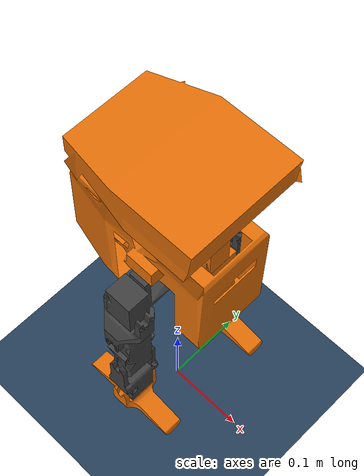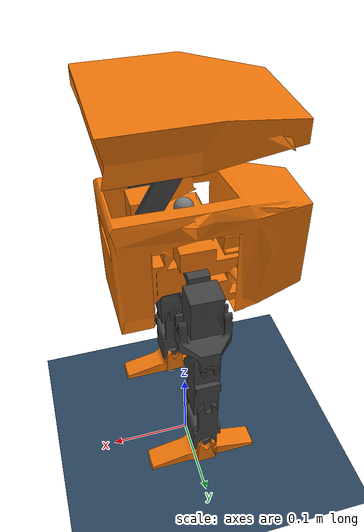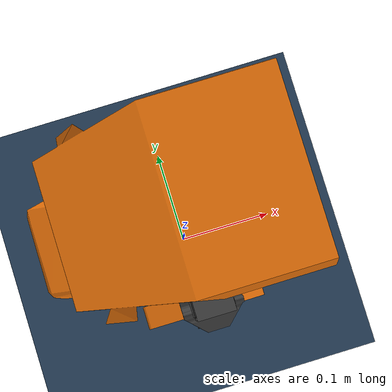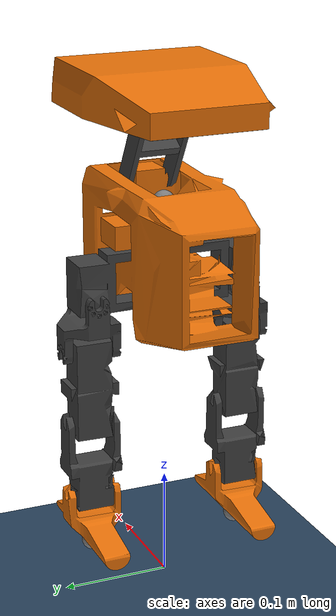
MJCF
<mujoco model="BD-5 scene">
	<!-- 100 hz -->
	<include file="BD-5_V2.xml" />
	<default>
		<!-- sliding friction, torsional friction, rolling friction -->
		<geom friction="1.5 0.01 0.0006"/>
	</default>
	<visual>
		<headlight diffuse="0.6 0.6 0.6" ambient="0.3 0.3 0.3" specular="0 0 0" />
		<rgba haze="0.15 0.25 0.35 1" />
		<global azimuth="150" elevation="-20" />
	</visual>
	<asset>
		<texture type="skybox" builtin="gradient" rgb1="0.3 0.5 0.7" rgb2="0 0 0" width="512" height="3072" />
		<texture type="2d" name="groundplane" builtin="checker" mark="edge" rgb1="0.2 0.3 0.4" rgb2="0.1 0.2 0.3" markrgb="0.8 0.8 0.8" width="300" height="300" />
		<material name="groundplane" texture="groundplane" texuniform="true" texrepeat="5 5" reflectance="0.2" />
	</asset>
	<worldbody>
		<light pos="0 0 3" dir="0 0 -1" directional="false" />
		<body name="floor">
			<geom pos="0 0 0" name="floor" size="0 0 .125" type="plane" material="groundplane" conaffinity="1" contype="1" />
		</body>
	</worldbody>
</mujoco>

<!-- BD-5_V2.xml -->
<mujoco model="BD-5">

  <compiler angle="radian" autolimits="true"/>
  <option iterations="1" ls_iterations="5" timestep="0.002" integrator="Euler" gravity="0 0 -9.81">
    <flag eulerdamp="disable"/>
  </option>

  <default>
    <joint limited="true" damping="1.084" armature="0.045" frictionloss="0.03" />
    <position inheritrange="1.0" kp="21.1" kv="0" forcerange="-4.1 4.1"/>
    <default class="visualgeom">
      <geom material="visualgeom" density="0" contype="0" conaffinity="0" group="2"/>
    </default>
    <default class="collision">
      <geom condim="6" friction="0.8 0.02 0.01" group="3" />
    </default>
  </default>

  <asset>
    <mesh name="BODY" file="assets/BODY.STL" maxhullvert="20"/>
    <mesh name="NECK" file="assets/NECK.STL" maxhullvert="20"/>
    <mesh name="HEAD" file="assets/HEAD.STL" maxhullvert="20"/>
    <mesh name="HIP_LEFT" file="assets/HIP_LEFT.STL" maxhullvert="20"/>
    <mesh name="HIP_R_LEFT" file="assets/HIP_R_LEFT.STL" maxhullvert="20"/>
    <mesh name="THIGH_LEFT" file="assets/THIGH_LEFT.STL" maxhullvert="20"/>
    <mesh name="CALF_LEFT" file="assets/CALF_LEFT.STL" maxhullvert="20"/>
    <mesh name="FOOT_LEFT" file="assets/FOOT_LEFT.STL" maxhullvert="20"/>
    <mesh name="FOOT_LEFT_COLLISION" file="assets/FOOT_LEFT.STL" maxhullvert="20"/>
    <mesh name="HIP_RIGHT" file="assets/HIP_RIGHT.STL" maxhullvert="20"/>
    <mesh name="HIP_R_RIGHT" file="assets/HIP_R_RIGHT.STL" maxhullvert="20"/>
    <mesh name="THIGH_RIGHT" file="assets/THIGH_RIGHT.STL" maxhullvert="20"/>
    <mesh name="CALF_RIGHT" file="assets/CALF_RIGHT.STL" maxhullvert="20"/>
    <mesh name="FOOT_RIGHT" file="assets/FOOT_RIGHT.STL" maxhullvert="20"/>
    <mesh name="FOOT_RIGHT_COLLISION" file="assets/FOOT_RIGHT.STL" maxhullvert="20"/>
    <material name="visualgeom" rgba="0.5 0.9 0.2 1" />
  </asset>

  <worldbody>
    <body name="root" pos="0 0 0.3170777382037414" quat="1 0 0 0">
      <freejoint name="root" />
      <site name="imu" size="0.01" pos="-0.00121 0.00083 0.05123" />
      <camera name="front" mode="trackcom" pos="0 -3.0 0.8170777382037414" xyaxes="1 0 0 0 0 1" />
      <camera name="track" mode="trackcom" pos="0 -3.0 0.8170777382037414" xyaxes="1 0 0 0 0 1" />
      <geom type="mesh" rgba="0.9098 0.44314 0.031373 1" mesh="BODY" class="visualgeom" />
      <geom pos="0.039 -0.0017032 0.06245" quat="0.965768 0 -0.259409 0" type="mesh" rgba="0.25098 0.25098 0.25098 1" mesh="NECK" class="visualgeom" />
      <geom type="mesh" rgba="0.25098 0.25098 0.25098 1" mesh="NECK" pos="0.039 -0.0017032 0.06245" quat="0.965768 0 -0.259409 0" />
      <geom pos="-0.00208669 -0.0017032 0.133414" quat="0.999999 0 0.00161 0" type="mesh" rgba="0.9098 0.44314 0.031373 1" mesh="HEAD" class="visualgeom" />
      <geom type="mesh" rgba="0.9098 0.44314 0.031373 1" mesh="HEAD" pos="-0.00208669 -0.0017032 0.133414" quat="0.999999 0 0.00161 0" />
      <body name="HIP_LEFT" pos="0 0.01425 -0.0436">
        <inertial pos="0.00185 0.05284 0.02786" quat="0.460341 -0.108037 -0.0721488 0.878185" mass="0.101" diaginertia="4.55664e-05 4.08892e-05 2.89285e-05" />
        <joint name="left_hip_yaw" pos="0 0 0" axis="0 0 1" range="-0.37899 0.37899" actuatorfrcrange="-4.1 4.1" damping="1.084" armature="0.045" frictionloss="0.03" />
        <geom type="mesh" rgba="0.25098 0.25098 0.25098 1" mesh="HIP_LEFT" class="visualgeom" />
        <body name="HIP_R_LEFT" pos="0 0.05925 0.01275">
          <inertial pos="0 0 -0.02515" quat="0.500015 0.499985 -0.500015 0.499985" mass="0.018" diaginertia="7.87081e-06 6.25751e-06 5.92983e-06" />
          <joint name="left_hip_roll" pos="0 0 0" axis="-1 0 0" range="-1.8827 0.38819" actuatorfrcrange="-4.1 4.1" damping="1.084" armature="0.045" frictionloss="0.03" />
          <geom type="mesh" rgba="0.25098 0.25098 0.25098 1" mesh="HIP_R_LEFT" class="visualgeom" />
          <body name="THIGH_LEFT" pos="0 0 -0.05">
            <inertial pos="0 0.00215 -0.03525" quat="0.999988 0 0.0049764 0" mass="0.174" diaginertia="0.000111454 9.33677e-05 5.11876e-05" />
            <joint name="left_hip_pitch" pos="0 0 0" axis="0 1 0" range="-1.7492 1.7492" actuatorfrcrange="-4.1 4.1" damping="1.084" armature="0.045" frictionloss="0.03" />
            <geom type="mesh" rgba="0.25098 0.25098 0.25098 1" mesh="THIGH_LEFT" class="visualgeom" />
            <body name="CALF_LEFT" pos="0 0 -0.0705">
              <inertial pos="0.00034 0.00191 -0.05036" quat="0.900306 0.428328 -0.0231046 -0.0738207" mass="0.098" diaginertia="4.49978e-05 3.42466e-05 2.77625e-05" />
              <joint name="left_knee" pos="0 0 0" axis="0 -1 0" range="0 2.3829" actuatorfrcrange="-4.1 4.1" damping="1.084" armature="0.045" frictionloss="0.03" />
              <geom type="mesh" rgba="0.25098 0.25098 0.25098 1" mesh="CALF_LEFT" class="visualgeom" />
              <body name="FOOT_LEFT" pos="0 0 -0.07064">
                <inertial pos="0 0 -0.03334" quat="0 0.707107 0 0.707107" mass="0.032" diaginertia="3.17443e-05 3.16424e-05 6.9037e-06" />
                <joint name="left_ankle" pos="0 0 0" axis="0 1 0" range="-1.8873 1.8873" actuatorfrcrange="-4.1 4.1" damping="1.084" armature="0.045" frictionloss="0.03" />
                <geom name="collision_foot_left" type="mesh" mesh="FOOT_LEFT_COLLISION" class="collision" />
                <geom type="mesh" rgba="0.9098 0.44314 0.031373 1" mesh="FOOT_LEFT" class="visualgeom" />
                <site name="left_foot_site" size="0.010" pos="0 0 -0.048"/>
              </body>
            </body>
          </body>
        </body>
      </body>
      <body name="HIP_RIGHT" pos="0 -0.01425 -0.0436">
        <inertial pos="0.00185 -0.0535 0.02786" quat="0.649192 0.572543 -0.368859 0.338655" mass="0.101" diaginertia="4.61603e-05 4.12116e-05 2.96353e-05" />
        <joint name="right_hip_yaw" pos="0 0 0" axis="0 0 1" range="-0.37899 0.37899" actuatorfrcrange="-4.1 4.1" damping="1.084" armature="0.045" frictionloss="0.03" />
        <geom type="mesh" rgba="0.25098 0.25098 0.25098 1" mesh="HIP_RIGHT" class="visualgeom" />
        <body name="HIP_R_RIGHT" pos="0 -0.05925 0.01275">
          <inertial pos="0 0 -0.02515" quat="-2.15792e-05 0.707107 2.15792e-05 0.707107" mass="0.018" diaginertia="7.87081e-06 6.25751e-06 5.92983e-06" />
          <joint name="right_hip_roll" pos="0 0 0" axis="1 0 0" range="-1.8827 0.38819" actuatorfrcrange="-4.1 4.1" damping="1.084" armature="0.045" frictionloss="0.03" />
          <geom type="mesh" rgba="0.25098 0.25098 0.25098 1" mesh="HIP_R_RIGHT" class="visualgeom" />
          <body name="THIGH_RIGHT" pos="0 0 -0.05">
            <inertial pos="0 0.00215 -0.03525" quat="0.999988 0 0.0049764 0" mass="0.174" diaginertia="0.000111454 9.33677e-05 5.11876e-05" />
            <joint name="right_hip_pitch" pos="0 0 0" axis="0 1 0" range="-1.7492 1.7492" actuatorfrcrange="-4.1 4.1" damping="1.084" armature="0.045" frictionloss="0.03" />
            <geom type="mesh" rgba="0.25098 0.25098 0.25098 1" mesh="THIGH_RIGHT" class="visualgeom" />
            <body name="CALF_RIGHT" pos="0 0 -0.0705">
              <inertial pos="0.00034 0.00191 -0.05036" quat="0.900306 0.428328 -0.0231046 -0.0738207" mass="0.098" diaginertia="4.49978e-05 3.42466e-05 2.77625e-05" />
              <joint name="right_knee" pos="0 0 0" axis="0 -1 0" range="0 2.3829" actuatorfrcrange="-4.1 4.1" damping="1.084" armature="0.045" frictionloss="0.03" />
              <geom type="mesh" rgba="0.25098 0.25098 0.25098 1" mesh="CALF_RIGHT" class="visualgeom" />
              <body name="FOOT_RIGHT" pos="0 0 -0.07064">
                <inertial pos="0 0 -0.03334" quat="0 0.707107 0 0.707107" mass="0.032" diaginertia="3.17443e-05 3.16424e-05 6.9037e-06" />
                <joint name="right_ankle" pos="0 0 0" axis="0 1 0" range="-1.8873 1.8873" actuatorfrcrange="-4.1 4.1" damping="1.084" armature="0.045" frictionloss="0.03" />
                <geom name="collision_foot_right" type="mesh" mesh="FOOT_RIGHT_COLLISION" class="collision" />
                <geom type="mesh" rgba="0.9098 0.44314 0.031373 1" mesh="FOOT_RIGHT" class="visualgeom" />
                <site name="right_foot_site" size="0.010" pos="0 0 -0.048"/>
              </body>
            </body>
          </body>
        </body>
      </body>
    </body>
  </worldbody>

  <actuator>
    <position name="left_hip_yaw" joint="left_hip_yaw" inheritrange="1"/>
    <position name="left_hip_roll" joint="left_hip_roll" inheritrange="1"/>
    <position name="left_hip_pitch" joint="left_hip_pitch" inheritrange="1"/>
    <position name="left_knee" joint="left_knee" inheritrange="1"/>
    <position name="left_ankle" joint="left_ankle" inheritrange="1"/>
    <position name="right_hip_yaw" joint="right_hip_yaw" inheritrange="1"/>
    <position name="right_hip_roll" joint="right_hip_roll" inheritrange="1"/>
    <position name="right_hip_pitch" joint="right_hip_pitch" inheritrange="1"/>
    <position name="right_knee" joint="right_knee" inheritrange="1"/>
    <position name="right_ankle" joint="right_ankle" inheritrange="1"/>
  </actuator>

  <sensor>
    <gyro site="imu" name="gyro"/>
    <velocimeter site="imu" name="local_linvel"/>
    <accelerometer site="imu" name="accelerometer"/>
    <framepos objtype="site" objname="imu" name="position"/>
    <framezaxis objtype="site" objname="imu" name="upvector"/>
    <framexaxis objtype="site" objname="imu" name="forwardvector"/>
    <framelinvel objtype="site" objname="imu" name="global_linvel"/>
    <frameangvel objtype="site" objname="imu" name="global_angvel"/>
    <framequat objtype="site" objname="imu" name="orientation"/>
    <framelinvel objtype="site" objname="left_foot_site" name="left_foot_global_linvel"/>
    <framelinvel objtype="site" objname="right_foot_site" name="right_foot_global_linvel"/>
    <framepos objtype="site" objname="left_foot_site" name="left_foot_pos"/>
    <framepos objtype="site" objname="right_foot_site" name="right_foot_pos"/>
  </sensor>
</mujoco>
